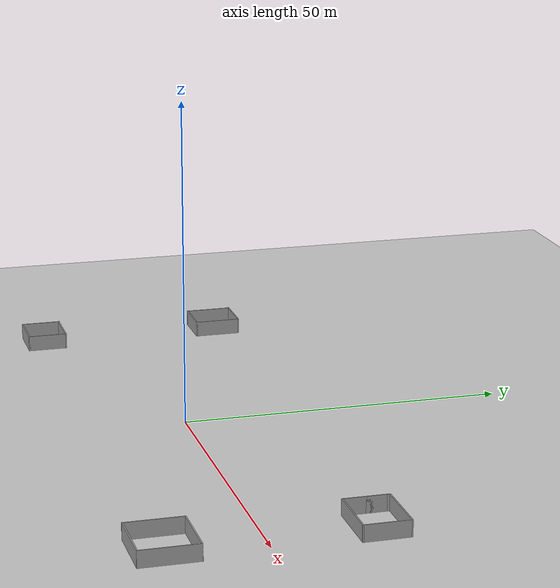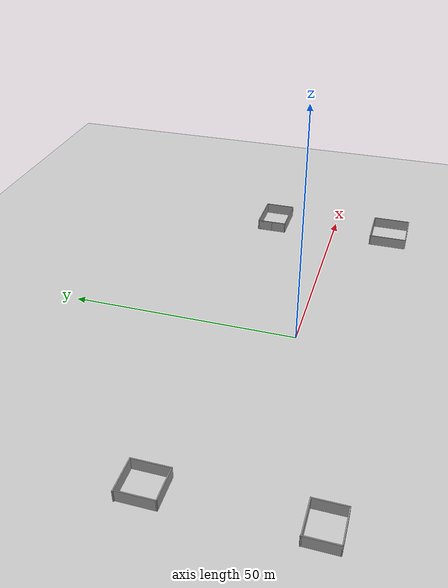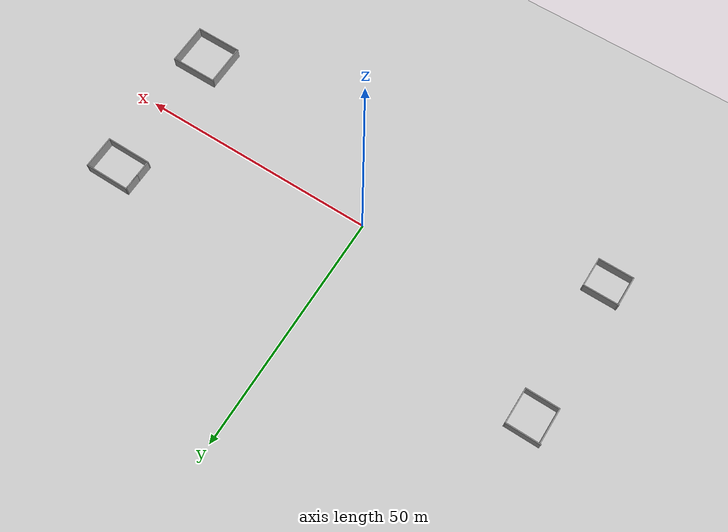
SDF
<sdf version="1.4">
 <world name="default">
  <light name="sun" type="directional">
   <pose>0 0 10 0 -0 0</pose>
   <diffuse>0.8 0.8 0.8 1</diffuse>
   <specular>0.2 0.2 0.2 1</specular>
   <attenuation>
    <range>1000</range>
    <constant>0.9</constant>
    <linear>0.01</linear>
    <quadratic>0.001</quadratic>
   </attenuation>
   <direction>-0.5 0.1 -0.9</direction>
  </light>
  <model name="ground_plane">
   <static>1</static>
   <link name="link">
    <collision name="collision">
     <geometry><plane><normal>0 0 1</normal><size>100 100</size></plane></geometry>
     <surface><friction><ode><mu>100</mu><mu2>50</mu2></ode></friction></surface>
    </collision>
    <visual name="visual">
     <cast_shadows>0</cast_shadows>
     <geometry><plane><normal>0 0 1</normal><size>100 100</size></plane></geometry>
     <material>
      <script><uri>file://media/materials/scripts/gazebo.material</uri><name>Gazebo/Grey</name></script>
     </material>
    </visual>
    <velocity_decay><linear>0</linear><angular>0</angular></velocity_decay>
   </link>
  </model>
  <physics type="ode">
   <max_step_size>0.001</max_step_size>
   <real_time_factor>1</real_time_factor>
   <real_time_update_rate>1000</real_time_update_rate>
   <gravity>0 0 -9.8</gravity>
  </physics>
  <scene><ambient>0.4 0.4 0.4 1</ambient><background>0.7 0.7 0.7 1</background><shadows>1</shadows></scene>
  <spherical_coordinates>
   <surface_model>EARTH_WGS84</surface_model>
   <latitude_deg>0</latitude_deg>
   <longitude_deg>0</longitude_deg>
   <elevation>0</elevation>
   <heading_deg>0</heading_deg>
  </spherical_coordinates>
  <model name="offShoreOil">
   <link name="Wall_0">
    <collision name="Wall_0_Collision">
     <geometry><box><size>7.34646 0.2 2.5</size></box></geometry>
     <pose>0 0 1.25 0 -0 0</pose>
    </collision>
    <visual name="Wall_0_Visual">
     <pose>0 0 1.25 0 -0 0</pose>
     <geometry><box><size>7.34646 0.2 2.5</size></box></geometry>
     <material>
      <script><uri>file://media/materials/scripts/gazebo.material</uri><name>Gazebo/Grey</name></script>
     </material>
    </visual>
    <velocity_decay><linear>0</linear><angular>0</angular></velocity_decay>
    <pose>-48.7449 15.266 0 0 0 -1.5708</pose>
   </link>
   <link name="Wall_1">
    <collision name="Wall_1_Collision">
     <geometry><box><size>7.06344 0.2 2.5</size></box></geometry>
     <pose>0 0 1.25 0 -0 0</pose>
    </collision>
    <visual name="Wall_1_Visual">
     <pose>0 0 1.25 0 -0 0</pose>
     <geometry><box><size>7.06344 0.2 2.5</size></box></geometry>
     <material>
      <script><uri>file://media/materials/scripts/gazebo.material</uri><name>Gazebo/Grey</name></script>
     </material>
    </visual>
    <velocity_decay><linear>0</linear><angular>0</angular></velocity_decay>
    <pose>-45.3132 11.6928 0 0 -0 0</pose>
   </link>
   <link name="Wall_17">
    <collision name="Wall_17_Collision">
     <geometry><box><size>6.49738 0.2 2.5</size></box></geometry>
     <pose>0 0 1.25 0 -0 0</pose>
    </collision>
    <visual name="Wall_17_Visual">
     <pose>0 0 1.25 0 -0 0</pose>
     <geometry><box><size>6.49738 0.2 2.5</size></box></geometry>
     <material>
      <script><uri>file://media/materials/scripts/gazebo.material</uri><name>Gazebo/Grey</name></script>
     </material>
    </visual>
    <velocity_decay><linear>0</linear><angular>0</angular></velocity_decay>
    <pose>-48.6034 -14.3104 0 0 0 -1.5708</pose>
   </link>
   <link name="Wall_18">
    <collision name="Wall_18_Collision">
     <geometry><box><size>7.41722 0.2 2.5</size></box></geometry>
     <pose>0 0 1.25 0 -0 0</pose>
    </collision>
    <visual name="Wall_18_Visual">
     <pose>0 0 1.25 0 -0 0</pose>
     <geometry><box><size>7.41722 0.2 2.5</size></box></geometry>
     <material>
      <script><uri>file://media/materials/scripts/gazebo.material</uri><name>Gazebo/Grey</name></script>
     </material>
    </visual>
    <velocity_decay><linear>0</linear><angular>0</angular></velocity_decay>
    <pose>-44.9948 -17.4591 0 0 -0 0</pose>
   </link>
   <link name="Wall_19">
    <collision name="Wall_19_Collision">
     <geometry><box><size>6.42662 0.2 2.5</size></box></geometry>
     <pose>0 0 1.25 0 -0 0</pose>
    </collision>
    <visual name="Wall_19_Visual">
     <pose>0 0 1.25 0 -0 0</pose>
     <geometry><box><size>6.42662 0.2 2.5</size></box></geometry>
     <material>
      <script><uri>file://media/materials/scripts/gazebo.material</uri><name>Gazebo/Grey</name></script>
     </material>
    </visual>
    <velocity_decay><linear>0</linear><angular>0</angular></velocity_decay>
    <pose>-41.3862 -14.3458 0 0 -0 1.5708</pose>
   </link>
   <link name="Wall_2">
    <collision name="Wall_2_Collision">
     <geometry><box><size>7.55873 0.2 2.5</size></box></geometry>
     <pose>0 0 1.25 0 -0 0</pose>
    </collision>
    <visual name="Wall_2_Visual">
     <pose>0 0 1.25 0 -0 0</pose>
     <geometry><box><size>7.55873 0.2 2.5</size></box></geometry>
     <material>
      <script><uri>file://media/materials/scripts/gazebo.material</uri><name>Gazebo/Grey</name></script>
     </material>
    </visual>
    <velocity_decay><linear>0</linear><angular>0</angular></velocity_decay>
    <pose>-41.8815 15.3722 0 0 -0 1.5708</pose>
   </link>
   <link name="Wall_20">
    <collision name="Wall_20_Collision">
     <geometry><box><size>7.48798 0.2 2.5</size></box></geometry>
     <pose>0 0 1.25 0 -0 0</pose>
    </collision>
    <visual name="Wall_20_Visual">
     <pose>0 0 1.25 0 -0 0</pose>
     <geometry><box><size>7.48798 0.2 2.5</size></box></geometry>
     <material>
      <script><uri>file://media/materials/scripts/gazebo.material</uri><name>Gazebo/Grey</name></script>
     </material>
    </visual>
    <velocity_decay><linear>0</linear><angular>0</angular></velocity_decay>
    <pose>-45.0302 -11.2325 0 0 -0 3.14159</pose>
   </link>
   <link name="Wall_22">
    <collision name="Wall_22_Collision">
     <geometry><box><size>8.62009 0.2 2.5</size></box></geometry>
     <pose>0 0 1.25 0 -0 0</pose>
    </collision>
    <visual name="Wall_22_Visual">
     <pose>0 0 1.25 0 -0 0</pose>
     <geometry><box><size>8.62009 0.2 2.5</size></box></geometry>
     <material>
      <script><uri>file://media/materials/scripts/gazebo.material</uri><name>Gazebo/Grey</name></script>
     </material>
    </visual>
    <velocity_decay><linear>0</linear><angular>0</angular></velocity_decay>
    <pose>42.3194 -14.1689 0 0 0 -1.5708</pose>
   </link>
   <link name="Wall_23">
    <collision name="Wall_23_Collision">
     <geometry><box><size>9.7522 0.2 2.5</size></box></geometry>
     <pose>0 0 1.25 0 -0 0</pose>
    </collision>
    <visual name="Wall_23_Visual">
     <pose>0 0 1.25 0 -0 0</pose>
     <geometry><box><size>9.7522 0.2 2.5</size></box></geometry>
     <material>
      <script><uri>file://media/materials/scripts/gazebo.material</uri><name>Gazebo/Grey</name></script>
     </material>
    </visual>
    <velocity_decay><linear>0</linear><angular>0</angular></velocity_decay>
    <pose>47.0955 -18.3789 0 0 -0 0</pose>
   </link>
   <link name="Wall_24">
    <collision name="Wall_24_Collision">
     <geometry><box><size>8.83236 0.2 2.5</size></box></geometry>
     <pose>0 0 1.25 0 -0 0</pose>
    </collision>
    <visual name="Wall_24_Visual">
     <pose>0 0 1.25 0 -0 0</pose>
     <geometry><box><size>8.83236 0.2 2.5</size></box></geometry>
     <material>
      <script><uri>file://media/materials/scripts/gazebo.material</uri><name>Gazebo/Grey</name></script>
     </material>
    </visual>
    <velocity_decay><linear>0</linear><angular>0</angular></velocity_decay>
    <pose>51.8716 -14.0628 0 0 -0 1.5708</pose>
   </link>
   <link name="Wall_25">
    <collision name="Wall_25_Collision">
     <geometry><box><size>9.82296 0.2 2.5</size></box></geometry>
     <pose>0 0 1.25 0 -0 0</pose>
    </collision>
    <visual name="Wall_25_Visual">
     <pose>0 0 1.25 0 -0 0</pose>
     <geometry><box><size>9.82296 0.2 2.5</size></box></geometry>
     <material>
      <script><uri>file://media/materials/scripts/gazebo.material</uri><name>Gazebo/Grey</name></script>
     </material>
    </visual>
    <velocity_decay><linear>0</linear><angular>0</angular></velocity_decay>
    <pose>47.0601 -9.74659 0 0 -0 3.14159</pose>
   </link>
   <link name="Wall_3">
    <collision name="Wall_3_Collision">
     <geometry><box><size>7.27571 0.2 2.5</size></box></geometry>
     <pose>0 0 1.25 0 -0 0</pose>
    </collision>
    <visual name="Wall_3_Visual">
     <pose>0 0 1.25 0 -0 0</pose>
     <geometry><box><size>7.27571 0.2 2.5</size></box></geometry>
     <material>
      <script><uri>file://media/materials/scripts/gazebo.material</uri><name>Gazebo/Grey</name></script>
     </material>
    </visual>
    <velocity_decay><linear>0</linear><angular>0</angular></velocity_decay>
    <pose>-45.4193 19.0515 0 0 -0 3.14159</pose>
   </link>
   <link name="Wall_5">
    <collision name="Wall_5_Collision">
     <geometry><box><size>6.49738 0.2 2.5</size></box></geometry>
     <pose>0 0 1.25 0 -0 0</pose>
    </collision>
    <visual name="Wall_5_Visual">
     <pose>0 0 1.25 0 -0 0</pose>
     <geometry><box><size>6.49738 0.2 2.5</size></box></geometry>
     <material>
      <script><uri>file://media/materials/scripts/gazebo.material</uri><name>Gazebo/Grey</name></script>
     </material>
    </visual>
    <velocity_decay><linear>0</linear><angular>0</angular></velocity_decay>
    <pose>42.0364 15.3368 0 0 0 -1.5708</pose>
   </link>
   <link name="Wall_6">
    <collision name="Wall_6_Collision">
     <geometry><box><size>9.68145 0.2 2.5</size></box></geometry>
     <pose>0 0 1.25 0 -0 0</pose>
    </collision>
    <visual name="Wall_6_Visual">
     <pose>0 0 1.25 0 -0 0</pose>
     <geometry><box><size>9.68145 0.2 2.5</size></box></geometry>
     <material>
      <script><uri>file://media/materials/scripts/gazebo.material</uri><name>Gazebo/Grey</name></script>
     </material>
    </visual>
    <velocity_decay><linear>0</linear><angular>0</angular></velocity_decay>
    <pose>46.7771 12.1881 0 0 -0 0</pose>
   </link>
   <link name="Wall_7">
    <collision name="Wall_7_Collision">
     <geometry><box><size>7.06344 0.2 2.5</size></box></geometry>
     <pose>0 0 1.25 0 -0 0</pose>
    </collision>
    <visual name="Wall_7_Visual">
     <pose>0 0 1.25 0 -0 0</pose>
     <geometry><box><size>7.06344 0.2 2.5</size></box></geometry>
     <material>
      <script><uri>file://media/materials/scripts/gazebo.material</uri><name>Gazebo/Grey</name></script>
     </material>
    </visual>
    <velocity_decay><linear>0</linear><angular>0</angular></velocity_decay>
    <pose>51.5178 15.6198 0 0 -0 1.5708</pose>
   </link>
   <link name="Wall_8">
    <collision name="Wall_8_Collision">
     <geometry><box><size>9.68145 0.2 2.5</size></box></geometry>
     <pose>0 0 1.25 0 -0 0</pose>
    </collision>
    <visual name="Wall_8_Visual">
     <pose>0 0 1.25 0 -0 0</pose>
     <geometry><box><size>9.68145 0.2 2.5</size></box></geometry>
     <material>
      <script><uri>file://media/materials/scripts/gazebo.material</uri><name>Gazebo/Grey</name></script>
     </material>
    </visual>
    <velocity_decay><linear>0</linear><angular>0</angular></velocity_decay>
    <pose>46.7771 19.0515 0 0 -0 3.14159</pose>
   </link>
   <link name="Wall_9">
    <collision name="Wall_9_Collision">
     <geometry><box><size>3.59634 0.2 2.5</size></box></geometry>
     <pose>0 0 1.25 0 -0 0</pose>
    </collision>
    <visual name="Wall_9_Visual">
     <pose>0 0 1.25 0 -0 0</pose>
     <geometry><box><size>3.59634 0.2 2.5</size></box></geometry>
     <material>
      <script><uri>file://media/materials/scripts/gazebo.material</uri><name>Gazebo/Grey</name></script>
     </material>
    </visual>
    <velocity_decay><linear>0</linear><angular>0</angular></velocity_decay>
    <pose>42.0364 17.3534 0 0 0 -1.5708</pose>
   </link>
   <static>1</static>
  </model>
 </world>
</sdf>
